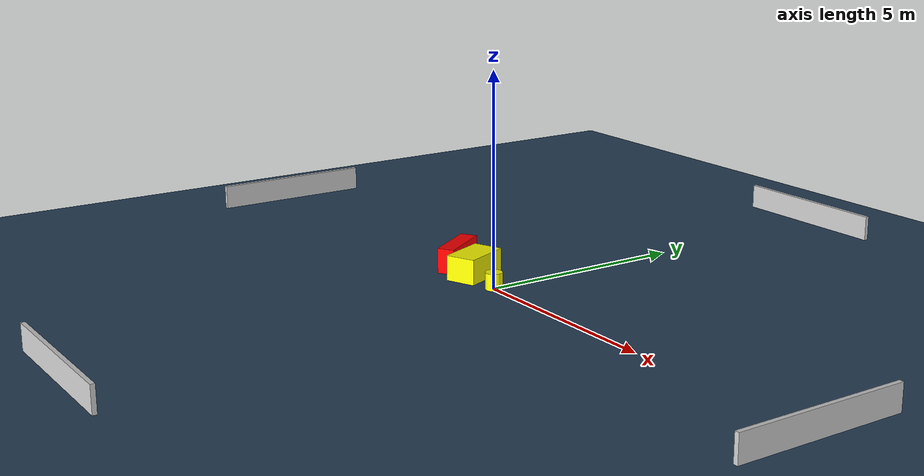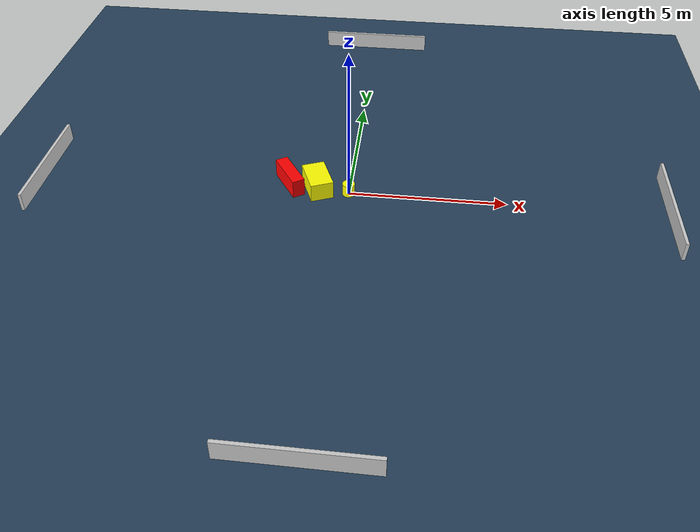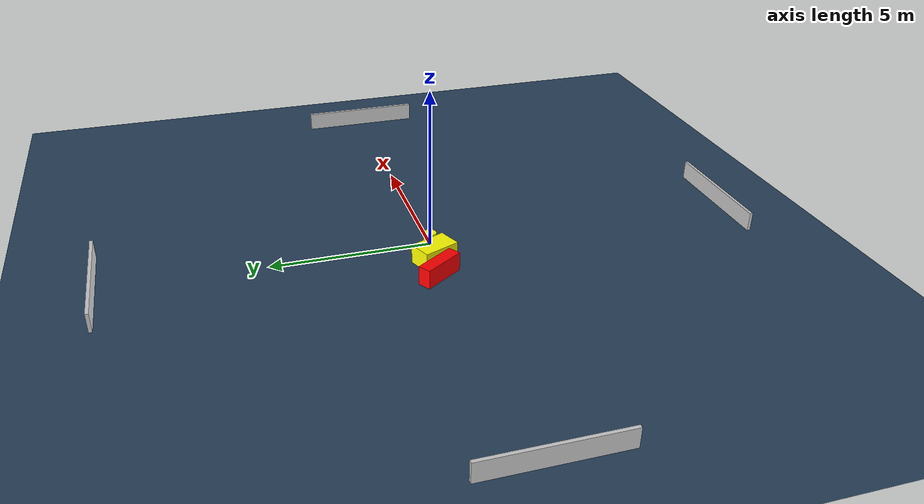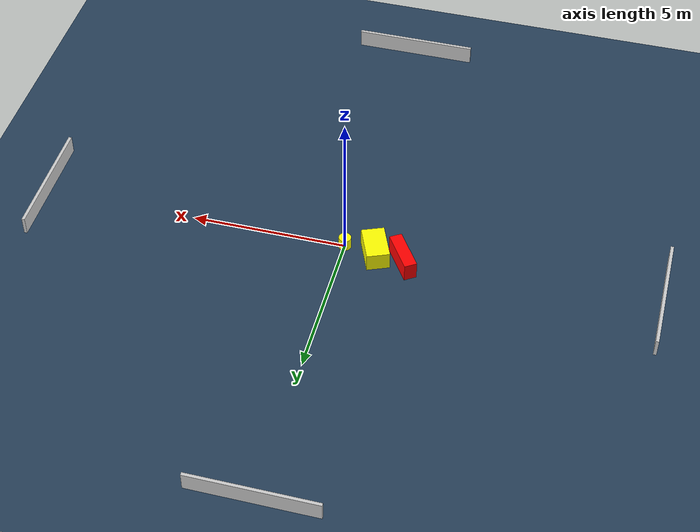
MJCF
<?xml version="1.0" ?>
<mujoco model="generated_environment">
  <option timestep="0.01" integrator="RK4" cone="elliptic"/>
  <default>
    <geom density="1"/>
  </default>
  <asset>
    <texture builtin="gradient" height="3072" name="skybox" rgb1="0.3 0.5 0.7" rgb2="0 0 0" type="skybox" width="512"/>
    <texture builtin="checker" height="300" name="groundplane" rgb1="0.2 0.3 0.4" rgb2="0.1 0.2 0.3" type="2d" width="300"/>
    <material name="groundplane" reflectance="0.2" texrepeat="5 5" texture="groundplane"/>
  </asset>
  <worldbody>
    <light dir="0 0 -1" directional="true" pos="0 0 1.5"/>
    <geom condim="3" friction="0.5 0.005 0.001" material="groundplane" name="floor" pos="0 0 0" size="0 0 0.05" type="plane"/>
    <body name="walls">
      <geom name="wall_1" condim="4" pos="-10.0 0.0 0.3" rgba="0.800000011920929 0.800000011920929 0.800000011920929 1.0" size="0.05 2.0 0.3" type="box"/>
      <geom name="wall_2" condim="4" pos="10.0 0.0 0.3" rgba="0.800000011920929 0.800000011920929 0.800000011920929 1.0" size="0.05 2.0 0.3" type="box"/>
      <geom name="wall_3" condim="4" pos="0.0 -10.0 0.3" rgba="0.800000011920929 0.800000011920929 0.800000011920929 1.0" size="2.0 0.05 0.3" type="box"/>
      <geom name="wall_4" condim="4" pos="0.0 10.0 0.3" rgba="0.800000011920929 0.800000011920929 0.800000011920929 1.0" size="2.0 0.05 0.3" type="box"/>
    </body>
    <body name="robot">
      <joint name="joint_x" type="slide" pos="0 0 0" axis="1 0 0"/>
      <joint name="joint_y" type="slide" pos="0 0 0" axis="0 1 0"/>
      <geom name="robot" type="cylinder" pos="0.0 0.0 0.2" size="0.2 0.2 0.0" mass="5.0" friction="1.0 0.005 0.0001" condim="4" rgba="1.0 1.0 0.0 1.0"/>
    </body>
    <body name="obstacle_1_movable">
      <geom name="obstacle_1_movable" condim="4" pos="-1.021262304306461 0.1467833513522577 0.3" euler="0 0 112.69046523187635" friction="0.0 0.005 0.001" rgba="1.0 1.0 0.0 1.0" size="0.5874727789897473 0.36646571796685234 0.3" type="box" mass="0.1"/>
      <joint type="free"/>
    </body>
    <body name="obstacle_2_static">
      <geom name="obstacle_2_static" condim="4" pos="-1.9323023876398695 0.27161940062880263 0.3" euler="0 0 123.32905868660534" friction="0.0 0.005 0.001" rgba="1.0 0.0 0.0 1.0" size="0.6835871835968115 0.20312633735375663 0.3" type="box"/>
    </body>
  </worldbody>
  <actuator>
    <motor name="actuator_x" joint="joint_x" gear="1" ctrlrange="-1 1"/>
    <motor name="actuator_y" joint="joint_y" gear="1" ctrlrange="-1 1"/>
  </actuator>
</mujoco>
